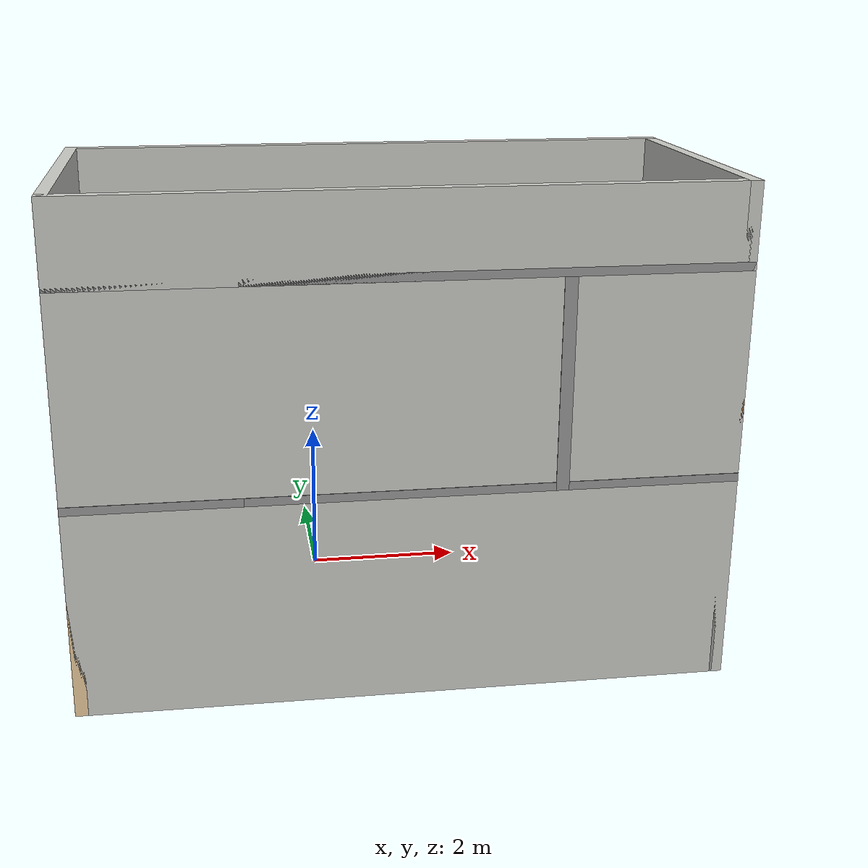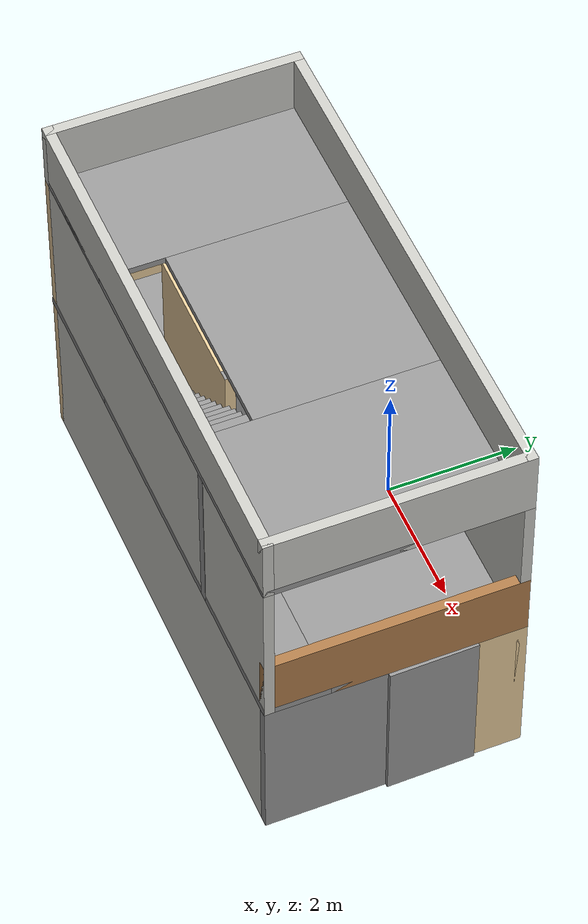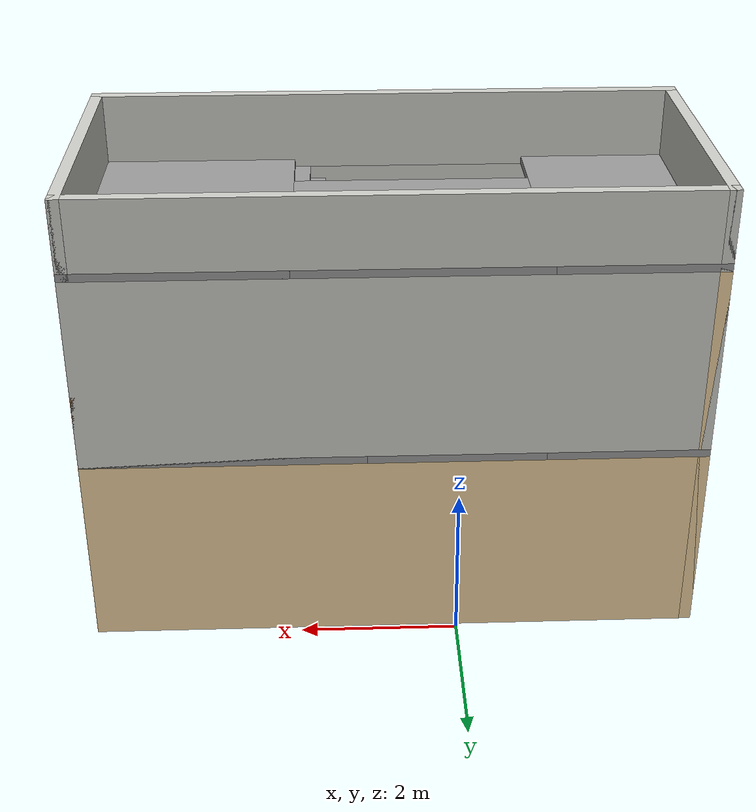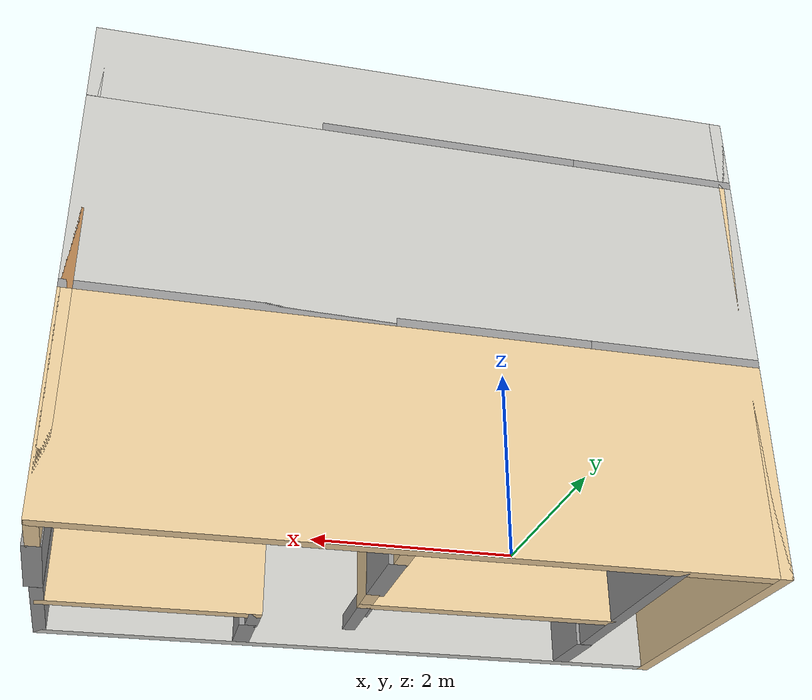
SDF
<?xml version='1.0'?>
<sdf version='1.7'>
  <model name='assignment'>
    <pose>0.78 -1.9075 0 0 -0 0</pose>
    <link name='Door_0'>
      <collision name='Door_0_Collision'>
        <geometry>
          <box>
            <size>0.872 0.2 2.5</size>
          </box>
        </geometry>
        <pose>0 0 1.25 0 -0 0</pose>
      </collision>
      <visual name='Door_0_Visual'>
        <pose>0 0 1.25 0 -0 0</pose>
        <geometry>
          <box>
            <size>0.872 0.2 2.5</size>
          </box>
        </geometry>
        <material>
          <script>
            <uri>file://media/materials/scripts/gazebo.material</uri>
            <name>Gazebo/Grey</name>
          </script>
        </material>
      </visual>
      <pose>-2.63646 -1.39085 0 0 -0 1.59452</pose>
    </link>
    <link name='Door_1'>
      <collision name='Door_1_Collision'>
        <geometry>
          <box>
            <size>1.039 0.2 2.5</size>
          </box>
        </geometry>
        <pose>0 0 1.25 0 -0 0</pose>
      </collision>
      <visual name='Door_1_Visual'>
        <pose>0 0 1.25 0 -0 0</pose>
        <geometry>
          <box>
            <size>1.039 0.2 2.5</size>
          </box>
        </geometry>
        <material>
          <script>
            <uri>file://media/materials/scripts/gazebo.material</uri>
            <name>Gazebo/Grey</name>
          </script>
        </material>
      </visual>
      <pose>0.248175 0.879451 0 0 -0 1.58189</pose>
    </link>
    <link name='Door_2'>
      <collision name='Door_2_Collision'>
        <geometry>
          <box>
            <size>0.719 0.2 2.5</size>
          </box>
        </geometry>
        <pose>0 0 1.25 0 -0 0</pose>
      </collision>
      <visual name='Door_2_Visual'>
        <pose>0 0 1.25 0 -0 0</pose>
        <geometry>
          <box>
            <size>0.719 0.2 2.5</size>
          </box>
        </geometry>
        <material>
          <script>
            <uri>file://media/materials/scripts/gazebo.material</uri>
            <name>Gazebo/Grey</name>
          </script>
        </material>
      </visual>
      <pose>1.45047 -1.39972 0 0 -0 1.56649</pose>
    </link>
    <link name='Door_3'>
      <collision name='Door_3_Collision'>
        <geometry>
          <box>
            <size>1.288 0.2 2.5</size>
          </box>
        </geometry>
        <pose>0 0 1.25 0 -0 0</pose>
      </collision>
      <visual name='Door_3_Visual'>
        <pose>0 0 1.25 0 -0 0</pose>
        <geometry>
          <box>
            <size>1.288 0.2 2.5</size>
          </box>
        </geometry>
        <material>
          <script>
            <uri>file://media/materials/scripts/gazebo.material</uri>
            <name>Gazebo/Grey</name>
          </script>
        </material>
      </visual>
      <pose>3.81962 0.490481 0 0 -0 1.5834</pose>
    </link>
    <link name='Door_4'>
      <collision name='Door_4_Collision'>
        <geometry>
          <box>
            <size>1.23 0.2 2.5</size>
          </box>
        </geometry>
        <pose>0 0 1.25 0 -0 0</pose>
      </collision>
      <visual name='Door_4_Visual'>
        <pose>0 0 1.25 0 -0 0</pose>
        <geometry>
          <box>
            <size>1.23 0.2 2.5</size>
          </box>
        </geometry>
        <material>
          <script>
            <uri>file://media/materials/scripts/gazebo.material</uri>
            <name>Gazebo/Grey</name>
          </script>
        </material>
      </visual>
      <pose>1.80627 -0.324655 2.5 0 -0 1.53145</pose>
    </link>
    <link name='Door_5'>
      <collision name='Door_5_Collision'>
        <geometry>
          <box>
            <size>1.07486 0.2 2</size>
          </box>
        </geometry>
        <pose>0 0 1 0 -0 0</pose>
      </collision>
      <visual name='Door_5_Visual'>
        <pose>0 0 1 0 -0 0</pose>
        <geometry>
          <box>
            <size>1.07486 0.2 2</size>
          </box>
        </geometry>
        <material>
          <script>
            <uri>file://media/materials/scripts/gazebo.material</uri>
            <name>Gazebo/Grey</name>
          </script>
        </material>
      </visual>
      <pose>-3.2085 -0.038622 2.5 0 -0 3.12405</pose>
    </link>
    <link name='Floor_6'>
      <pose>0 -0.036003 2.5 0 -0 0</pose>
      <visual name='Floor_6_Visual_0'>
        <pose>-2.86537 0 0.05 0 -0 0</pose>
        <geometry>
          <box>
            <size>2.01925 3.75701 0.1</size>
          </box>
        </geometry>
        <material>
          <script>
            <uri>file://media/materials/scripts/gazebo.material</uri>
            <name>Gazebo/Grey</name>
          </script>
          <ambient>1 1 1 1</ambient>
        </material>
        <meta>
          <layer>1</layer>
        </meta>
      </visual>
      <collision name='Floor_6_Collision_0'>
        <geometry>
          <box>
            <size>2.01925 3.75701 0.1</size>
          </box>
        </geometry>
        <pose>-2.86537 0 0.05 0 -0 0</pose>
      </collision>
      <visual name='Floor_6_Visual_1'>
        <pose>1.00962 -1.40283 0.05 0 -0 0</pose>
        <geometry>
          <box>
            <size>5.73075 0.951347 0.1</size>
          </box>
        </geometry>
        <material>
          <script>
            <uri>file://media/materials/scripts/gazebo.material</uri>
            <name>Gazebo/Grey</name>
          </script>
          <ambient>1 1 1 1</ambient>
        </material>
        <meta>
          <layer>1</layer>
        </meta>
      </visual>
      <collision name='Floor_6_Collision_1'>
        <geometry>
          <box>
            <size>5.73075 0.951347 0.1</size>
          </box>
        </geometry>
        <pose>1.00962 -1.40283 0.05 0 -0 0</pose>
      </collision>
      <visual name='Floor_6_Visual_2'>
        <pose>2.11365 0.475673 0.05 0 -0 0</pose>
        <geometry>
          <box>
            <size>3.52269 2.80566 0.1</size>
          </box>
        </geometry>
        <material>
          <script>
            <uri>file://media/materials/scripts/gazebo.material</uri>
            <name>Gazebo/Grey</name>
          </script>
          <ambient>1 1 1 1</ambient>
        </material>
        <meta>
          <layer>1</layer>
        </meta>
      </visual>
      <collision name='Floor_6_Collision_2'>
        <geometry>
          <box>
            <size>3.52269 2.80566 0.1</size>
          </box>
        </geometry>
        <pose>2.11365 0.475673 0.05 0 -0 0</pose>
      </collision>
      <visual name='Floor_6_Visual_3'>
        <pose>-0.751722 0.903899 0.05 0 -0 0</pose>
        <geometry>
          <box>
            <size>2.20806 1.94921 0.1</size>
          </box>
        </geometry>
        <material>
          <script>
            <uri>file://media/materials/scripts/gazebo.material</uri>
            <name>Gazebo/Grey</name>
          </script>
          <ambient>1 1 1 1</ambient>
        </material>
        <meta>
          <layer>1</layer>
        </meta>
      </visual>
      <collision name='Floor_6_Collision_3'>
        <geometry>
          <box>
            <size>2.20806 1.94921 0.1</size>
          </box>
        </geometry>
        <pose>-0.751722 0.903899 0.05 0 -0 0</pose>
      </collision>
    </link>
    <link name='Floor_7'>
      <pose>0 -0.0325 5 0 -0 0</pose>
      <visual name='Floor_7_Visual_0'>
        <pose>-2.8538 0 0.05 0 -0 0</pose>
        <geometry>
          <box>
            <size>2.0424 3.75 0.1</size>
          </box>
        </geometry>
        <material>
          <script>
            <uri>file://media/materials/scripts/gazebo.material</uri>
            <name>Gazebo/Grey</name>
          </script>
          <ambient>1 1 1 1</ambient>
        </material>
        <meta>
          <layer>2</layer>
        </meta>
      </visual>
      <collision name='Floor_7_Collision_0'>
        <geometry>
          <box>
            <size>2.0424 3.75 0.1</size>
          </box>
        </geometry>
        <pose>-2.8538 0 0.05 0 -0 0</pose>
      </collision>
      <visual name='Floor_7_Visual_1'>
        <pose>1.0212 -1.83653 0.05 0 -0 0</pose>
        <geometry>
          <box>
            <size>5.7076 0.076941 0.1</size>
          </box>
        </geometry>
        <material>
          <script>
            <uri>file://media/materials/scripts/gazebo.material</uri>
            <name>Gazebo/Grey</name>
          </script>
          <ambient>1 1 1 1</ambient>
        </material>
        <meta>
          <layer>2</layer>
        </meta>
      </visual>
      <collision name='Floor_7_Collision_1'>
        <geometry>
          <box>
            <size>5.7076 0.076941 0.1</size>
          </box>
        </geometry>
        <pose>1.0212 -1.83653 0.05 0 -0 0</pose>
      </collision>
      <visual name='Floor_7_Visual_2'>
        <pose>2.5479 0.03847 0.05 0 -0 0</pose>
        <geometry>
          <box>
            <size>2.6542 3.67306 0.1</size>
          </box>
        </geometry>
        <material>
          <script>
            <uri>file://media/materials/scripts/gazebo.material</uri>
            <name>Gazebo/Grey</name>
          </script>
          <ambient>1 1 1 1</ambient>
        </material>
        <meta>
          <layer>2</layer>
        </meta>
      </visual>
      <collision name='Floor_7_Collision_2'>
        <geometry>
          <box>
            <size>2.6542 3.67306 0.1</size>
          </box>
        </geometry>
        <pose>2.5479 0.03847 0.05 0 -0 0</pose>
      </collision>
      <visual name='Floor_7_Visual_3'>
        <pose>-0.305897 0.474671 0.05 0 -0 0</pose>
        <geometry>
          <box>
            <size>3.0534 2.80066 0.1</size>
          </box>
        </geometry>
        <material>
          <script>
            <uri>file://media/materials/scripts/gazebo.material</uri>
            <name>Gazebo/Grey</name>
          </script>
          <ambient>1 1 1 1</ambient>
        </material>
        <meta>
          <layer>2</layer>
        </meta>
      </visual>
      <collision name='Floor_7_Collision_3'>
        <geometry>
          <box>
            <size>3.0534 2.80066 0.1</size>
          </box>
        </geometry>
        <pose>-0.305897 0.474671 0.05 0 -0 0</pose>
      </collision>
    </link>
    <link name='Stairs_2'>
      <visual name='Stairs_2_Visual_0'>
        <pose>0.278705 -0.534935 0.083333 0 -0 -1.5708</pose>
        <geometry>
          <box>
            <size>0.856451 0.147204 0.166667</size>
          </box>
        </geometry>
        <material>
          <script>
            <uri>file://media/materials/scripts/gazebo.material</uri>
            <name>Gazebo/Grey</name>
          </script>
          <ambient>1 1 1 1</ambient>
        </material>
        <meta>
          <layer>0</layer>
        </meta>
      </visual>
      <collision name='Stairs_2_Collision_0'>
        <geometry>
          <box>
            <size>0.856451 0.147204 0.166667</size>
          </box>
        </geometry>
        <pose>0.278705 -0.534935 0.083333 0 -0 -1.5708</pose>
      </collision>
      <visual name='Stairs_2_Visual_1'>
        <pose>0.131501 -0.534935 0.25 0 -0 -1.5708</pose>
        <geometry>
          <box>
            <size>0.856451 0.147204 0.166667</size>
          </box>
        </geometry>
        <material>
          <script>
            <uri>file://media/materials/scripts/gazebo.material</uri>
            <name>Gazebo/Grey</name>
          </script>
          <ambient>1 1 1 1</ambient>
        </material>
        <meta>
          <layer>0</layer>
        </meta>
      </visual>
      <collision name='Stairs_2_Collision_1'>
        <geometry>
          <box>
            <size>0.856451 0.147204 0.166667</size>
          </box>
        </geometry>
        <pose>0.131501 -0.534935 0.25 0 -0 -1.5708</pose>
      </collision>
      <visual name='Stairs_2_Visual_2'>
        <pose>-0.015702 -0.534935 0.416667 0 -0 -1.5708</pose>
        <geometry>
          <box>
            <size>0.856451 0.147204 0.166667</size>
          </box>
        </geometry>
        <material>
          <script>
            <uri>file://media/materials/scripts/gazebo.material</uri>
            <name>Gazebo/Grey</name>
          </script>
          <ambient>1 1 1 1</ambient>
        </material>
        <meta>
          <layer>0</layer>
        </meta>
      </visual>
      <collision name='Stairs_2_Collision_2'>
        <geometry>
          <box>
            <size>0.856451 0.147204 0.166667</size>
          </box>
        </geometry>
        <pose>-0.015702 -0.534935 0.416667 0 -0 -1.5708</pose>
      </collision>
      <visual name='Stairs_2_Visual_3'>
        <pose>-0.162906 -0.534935 0.583333 0 -0 -1.5708</pose>
        <geometry>
          <box>
            <size>0.856451 0.147204 0.166667</size>
          </box>
        </geometry>
        <material>
          <script>
            <uri>file://media/materials/scripts/gazebo.material</uri>
            <name>Gazebo/Grey</name>
          </script>
          <ambient>1 1 1 1</ambient>
        </material>
        <meta>
          <layer>0</layer>
        </meta>
      </visual>
      <collision name='Stairs_2_Collision_3'>
        <geometry>
          <box>
            <size>0.856451 0.147204 0.166667</size>
          </box>
        </geometry>
        <pose>-0.162906 -0.534935 0.583333 0 -0 -1.5708</pose>
      </collision>
      <visual name='Stairs_2_Visual_4'>
        <pose>-0.31011 -0.534935 0.75 0 -0 -1.5708</pose>
        <geometry>
          <box>
            <size>0.856451 0.147204 0.166667</size>
          </box>
        </geometry>
        <material>
          <script>
            <uri>file://media/materials/scripts/gazebo.material</uri>
            <name>Gazebo/Grey</name>
          </script>
          <ambient>1 1 1 1</ambient>
        </material>
        <meta>
          <layer>0</layer>
        </meta>
      </visual>
      <collision name='Stairs_2_Collision_4'>
        <geometry>
          <box>
            <size>0.856451 0.147204 0.166667</size>
          </box>
        </geometry>
        <pose>-0.31011 -0.534935 0.75 0 -0 -1.5708</pose>
      </collision>
      <visual name='Stairs_2_Visual_5'>
        <pose>-0.457314 -0.534935 0.916667 0 -0 -1.5708</pose>
        <geometry>
          <box>
            <size>0.856451 0.147204 0.166667</size>
          </box>
        </geometry>
        <material>
          <script>
            <uri>file://media/materials/scripts/gazebo.material</uri>
            <name>Gazebo/Grey</name>
          </script>
          <ambient>1 1 1 1</ambient>
        </material>
        <meta>
          <layer>0</layer>
        </meta>
      </visual>
      <collision name='Stairs_2_Collision_5'>
        <geometry>
          <box>
            <size>0.856451 0.147204 0.166667</size>
          </box>
        </geometry>
        <pose>-0.457314 -0.534935 0.916667 0 -0 -1.5708</pose>
      </collision>
      <visual name='Stairs_2_Visual_6'>
        <pose>-0.604518 -0.534935 1.08333 0 -0 -1.5708</pose>
        <geometry>
          <box>
            <size>0.856451 0.147204 0.166667</size>
          </box>
        </geometry>
        <material>
          <script>
            <uri>file://media/materials/scripts/gazebo.material</uri>
            <name>Gazebo/Grey</name>
          </script>
          <ambient>1 1 1 1</ambient>
        </material>
        <meta>
          <layer>0</layer>
        </meta>
      </visual>
      <collision name='Stairs_2_Collision_6'>
        <geometry>
          <box>
            <size>0.856451 0.147204 0.166667</size>
          </box>
        </geometry>
        <pose>-0.604518 -0.534935 1.08333 0 -0 -1.5708</pose>
      </collision>
      <visual name='Stairs_2_Visual_7'>
        <pose>-0.751722 -0.534935 1.25 0 -0 -1.5708</pose>
        <geometry>
          <box>
            <size>0.856451 0.147204 0.166667</size>
          </box>
        </geometry>
        <material>
          <script>
            <uri>file://media/materials/scripts/gazebo.material</uri>
            <name>Gazebo/Grey</name>
          </script>
          <ambient>1 1 1 1</ambient>
        </material>
        <meta>
          <layer>0</layer>
        </meta>
      </visual>
      <collision name='Stairs_2_Collision_7'>
        <geometry>
          <box>
            <size>0.856451 0.147204 0.166667</size>
          </box>
        </geometry>
        <pose>-0.751722 -0.534935 1.25 0 -0 -1.5708</pose>
      </collision>
      <visual name='Stairs_2_Visual_8'>
        <pose>-0.898926 -0.534935 1.41667 0 -0 -1.5708</pose>
        <geometry>
          <box>
            <size>0.856451 0.147204 0.166667</size>
          </box>
        </geometry>
        <material>
          <script>
            <uri>file://media/materials/scripts/gazebo.material</uri>
            <name>Gazebo/Grey</name>
          </script>
          <ambient>1 1 1 1</ambient>
        </material>
        <meta>
          <layer>0</layer>
        </meta>
      </visual>
      <collision name='Stairs_2_Collision_8'>
        <geometry>
          <box>
            <size>0.856451 0.147204 0.166667</size>
          </box>
        </geometry>
        <pose>-0.898926 -0.534935 1.41667 0 -0 -1.5708</pose>
      </collision>
      <visual name='Stairs_2_Visual_9'>
        <pose>-1.04613 -0.534935 1.58333 0 -0 -1.5708</pose>
        <geometry>
          <box>
            <size>0.856451 0.147204 0.166667</size>
          </box>
        </geometry>
        <material>
          <script>
            <uri>file://media/materials/scripts/gazebo.material</uri>
            <name>Gazebo/Grey</name>
          </script>
          <ambient>1 1 1 1</ambient>
        </material>
        <meta>
          <layer>0</layer>
        </meta>
      </visual>
      <collision name='Stairs_2_Collision_9'>
        <geometry>
          <box>
            <size>0.856451 0.147204 0.166667</size>
          </box>
        </geometry>
        <pose>-1.04613 -0.534935 1.58333 0 -0 -1.5708</pose>
      </collision>
      <visual name='Stairs_2_Visual_10'>
        <pose>-1.19333 -0.534935 1.75 0 -0 -1.5708</pose>
        <geometry>
          <box>
            <size>0.856451 0.147204 0.166667</size>
          </box>
        </geometry>
        <material>
          <script>
            <uri>file://media/materials/scripts/gazebo.material</uri>
            <name>Gazebo/Grey</name>
          </script>
          <ambient>1 1 1 1</ambient>
        </material>
        <meta>
          <layer>0</layer>
        </meta>
      </visual>
      <collision name='Stairs_2_Collision_10'>
        <geometry>
          <box>
            <size>0.856451 0.147204 0.166667</size>
          </box>
        </geometry>
        <pose>-1.19333 -0.534935 1.75 0 -0 -1.5708</pose>
      </collision>
      <visual name='Stairs_2_Visual_11'>
        <pose>-1.34054 -0.534935 1.91667 0 -0 -1.5708</pose>
        <geometry>
          <box>
            <size>0.856451 0.147204 0.166667</size>
          </box>
        </geometry>
        <material>
          <script>
            <uri>file://media/materials/scripts/gazebo.material</uri>
            <name>Gazebo/Grey</name>
          </script>
          <ambient>1 1 1 1</ambient>
        </material>
        <meta>
          <layer>0</layer>
        </meta>
      </visual>
      <collision name='Stairs_2_Collision_11'>
        <geometry>
          <box>
            <size>0.856451 0.147204 0.166667</size>
          </box>
        </geometry>
        <pose>-1.34054 -0.534935 1.91667 0 -0 -1.5708</pose>
      </collision>
      <visual name='Stairs_2_Visual_12'>
        <pose>-1.48774 -0.534935 2.08333 0 -0 -1.5708</pose>
        <geometry>
          <box>
            <size>0.856451 0.147204 0.166667</size>
          </box>
        </geometry>
        <material>
          <script>
            <uri>file://media/materials/scripts/gazebo.material</uri>
            <name>Gazebo/Grey</name>
          </script>
          <ambient>1 1 1 1</ambient>
        </material>
        <meta>
          <layer>0</layer>
        </meta>
      </visual>
      <collision name='Stairs_2_Collision_12'>
        <geometry>
          <box>
            <size>0.856451 0.147204 0.166667</size>
          </box>
        </geometry>
        <pose>-1.48774 -0.534935 2.08333 0 -0 -1.5708</pose>
      </collision>
      <visual name='Stairs_2_Visual_13'>
        <pose>-1.63495 -0.534935 2.25 0 -0 -1.5708</pose>
        <geometry>
          <box>
            <size>0.856451 0.147204 0.166667</size>
          </box>
        </geometry>
        <material>
          <script>
            <uri>file://media/materials/scripts/gazebo.material</uri>
            <name>Gazebo/Grey</name>
          </script>
          <ambient>1 1 1 1</ambient>
        </material>
        <meta>
          <layer>0</layer>
        </meta>
      </visual>
      <collision name='Stairs_2_Collision_13'>
        <geometry>
          <box>
            <size>0.856451 0.147204 0.166667</size>
          </box>
        </geometry>
        <pose>-1.63495 -0.534935 2.25 0 -0 -1.5708</pose>
      </collision>
      <visual name='Stairs_2_Visual_14'>
        <pose>-1.78215 -0.534935 2.41667 0 -0 -1.5708</pose>
        <geometry>
          <box>
            <size>0.856451 0.147204 0.166667</size>
          </box>
        </geometry>
        <material>
          <script>
            <uri>file://media/materials/scripts/gazebo.material</uri>
            <name>Gazebo/Grey</name>
          </script>
          <ambient>1 1 1 1</ambient>
        </material>
        <meta>
          <layer>0</layer>
        </meta>
      </visual>
      <collision name='Stairs_2_Collision_14'>
        <geometry>
          <box>
            <size>0.856451 0.147204 0.166667</size>
          </box>
        </geometry>
        <pose>-1.78215 -0.534935 2.41667 0 -0 -1.5708</pose>
      </collision>
    </link>
    <link name='Stairs_3'>
      <visual name='Stairs_3_Visual_0'>
        <pose>-1.73082 -1.39436 2.58333 0 -0 1.5708</pose>
        <geometry>
          <box>
            <size>0.872401 0.20356 0.166667</size>
          </box>
        </geometry>
        <material>
          <script>
            <uri>file://media/materials/scripts/gazebo.material</uri>
            <name>Gazebo/Grey</name>
          </script>
          <ambient>1 1 1 1</ambient>
        </material>
        <meta>
          <layer>1</layer>
        </meta>
      </visual>
      <collision name='Stairs_3_Collision_0'>
        <geometry>
          <box>
            <size>0.872401 0.20356 0.166667</size>
          </box>
        </geometry>
        <pose>-1.73082 -1.39436 2.58333 0 -0 1.5708</pose>
      </collision>
      <visual name='Stairs_3_Visual_1'>
        <pose>-1.52726 -1.39436 2.75 0 -0 1.5708</pose>
        <geometry>
          <box>
            <size>0.872401 0.20356 0.166667</size>
          </box>
        </geometry>
        <material>
          <script>
            <uri>file://media/materials/scripts/gazebo.material</uri>
            <name>Gazebo/Grey</name>
          </script>
          <ambient>1 1 1 1</ambient>
        </material>
        <meta>
          <layer>1</layer>
        </meta>
      </visual>
      <collision name='Stairs_3_Collision_1'>
        <geometry>
          <box>
            <size>0.872401 0.20356 0.166667</size>
          </box>
        </geometry>
        <pose>-1.52726 -1.39436 2.75 0 -0 1.5708</pose>
      </collision>
      <visual name='Stairs_3_Visual_2'>
        <pose>-1.3237 -1.39436 2.91667 0 -0 1.5708</pose>
        <geometry>
          <box>
            <size>0.872401 0.20356 0.166667</size>
          </box>
        </geometry>
        <material>
          <script>
            <uri>file://media/materials/scripts/gazebo.material</uri>
            <name>Gazebo/Grey</name>
          </script>
          <ambient>1 1 1 1</ambient>
        </material>
        <meta>
          <layer>1</layer>
        </meta>
      </visual>
      <collision name='Stairs_3_Collision_2'>
        <geometry>
          <box>
            <size>0.872401 0.20356 0.166667</size>
          </box>
        </geometry>
        <pose>-1.3237 -1.39436 2.91667 0 -0 1.5708</pose>
      </collision>
      <visual name='Stairs_3_Visual_3'>
        <pose>-1.12014 -1.39436 3.08333 0 -0 1.5708</pose>
        <geometry>
          <box>
            <size>0.872401 0.20356 0.166667</size>
          </box>
        </geometry>
        <material>
          <script>
            <uri>file://media/materials/scripts/gazebo.material</uri>
            <name>Gazebo/Grey</name>
          </script>
          <ambient>1 1 1 1</ambient>
        </material>
        <meta>
          <layer>1</layer>
        </meta>
      </visual>
      <collision name='Stairs_3_Collision_3'>
        <geometry>
          <box>
            <size>0.872401 0.20356 0.166667</size>
          </box>
        </geometry>
        <pose>-1.12014 -1.39436 3.08333 0 -0 1.5708</pose>
      </collision>
      <visual name='Stairs_3_Visual_4'>
        <pose>-0.916578 -1.39436 3.25 0 -0 1.5708</pose>
        <geometry>
          <box>
            <size>0.872401 0.20356 0.166667</size>
          </box>
        </geometry>
        <material>
          <script>
            <uri>file://media/materials/scripts/gazebo.material</uri>
            <name>Gazebo/Grey</name>
          </script>
          <ambient>1 1 1 1</ambient>
        </material>
        <meta>
          <layer>1</layer>
        </meta>
      </visual>
      <collision name='Stairs_3_Collision_4'>
        <geometry>
          <box>
            <size>0.872401 0.20356 0.166667</size>
          </box>
        </geometry>
        <pose>-0.916578 -1.39436 3.25 0 -0 1.5708</pose>
      </collision>
      <visual name='Stairs_3_Visual_5'>
        <pose>-0.713017 -1.39436 3.41667 0 -0 1.5708</pose>
        <geometry>
          <box>
            <size>0.872401 0.20356 0.166667</size>
          </box>
        </geometry>
        <material>
          <script>
            <uri>file://media/materials/scripts/gazebo.material</uri>
            <name>Gazebo/Grey</name>
          </script>
          <ambient>1 1 1 1</ambient>
        </material>
        <meta>
          <layer>1</layer>
        </meta>
      </visual>
      <collision name='Stairs_3_Collision_5'>
        <geometry>
          <box>
            <size>0.872401 0.20356 0.166667</size>
          </box>
        </geometry>
        <pose>-0.713017 -1.39436 3.41667 0 -0 1.5708</pose>
      </collision>
      <visual name='Stairs_3_Visual_6'>
        <pose>-0.509457 -1.39436 3.58333 0 -0 1.5708</pose>
        <geometry>
          <box>
            <size>0.872401 0.20356 0.166667</size>
          </box>
        </geometry>
        <material>
          <script>
            <uri>file://media/materials/scripts/gazebo.material</uri>
            <name>Gazebo/Grey</name>
          </script>
          <ambient>1 1 1 1</ambient>
        </material>
        <meta>
          <layer>1</layer>
        </meta>
      </visual>
      <collision name='Stairs_3_Collision_6'>
        <geometry>
          <box>
            <size>0.872401 0.20356 0.166667</size>
          </box>
        </geometry>
        <pose>-0.509457 -1.39436 3.58333 0 -0 1.5708</pose>
      </collision>
      <visual name='Stairs_3_Visual_7'>
        <pose>-0.305897 -1.39436 3.75 0 -0 1.5708</pose>
        <geometry>
          <box>
            <size>0.872401 0.20356 0.166667</size>
          </box>
        </geometry>
        <material>
          <script>
            <uri>file://media/materials/scripts/gazebo.material</uri>
            <name>Gazebo/Grey</name>
          </script>
          <ambient>1 1 1 1</ambient>
        </material>
        <meta>
          <layer>1</layer>
        </meta>
      </visual>
      <collision name='Stairs_3_Collision_7'>
        <geometry>
          <box>
            <size>0.872401 0.20356 0.166667</size>
          </box>
        </geometry>
        <pose>-0.305897 -1.39436 3.75 0 -0 1.5708</pose>
      </collision>
      <visual name='Stairs_3_Visual_8'>
        <pose>-0.102337 -1.39436 3.91667 0 -0 1.5708</pose>
        <geometry>
          <box>
            <size>0.872401 0.20356 0.166667</size>
          </box>
        </geometry>
        <material>
          <script>
            <uri>file://media/materials/scripts/gazebo.material</uri>
            <name>Gazebo/Grey</name>
          </script>
          <ambient>1 1 1 1</ambient>
        </material>
        <meta>
          <layer>1</layer>
        </meta>
      </visual>
      <collision name='Stairs_3_Collision_8'>
        <geometry>
          <box>
            <size>0.872401 0.20356 0.166667</size>
          </box>
        </geometry>
        <pose>-0.102337 -1.39436 3.91667 0 -0 1.5708</pose>
      </collision>
      <visual name='Stairs_3_Visual_9'>
        <pose>0.101223 -1.39436 4.08333 0 -0 1.5708</pose>
        <geometry>
          <box>
            <size>0.872401 0.20356 0.166667</size>
          </box>
        </geometry>
        <material>
          <script>
            <uri>file://media/materials/scripts/gazebo.material</uri>
            <name>Gazebo/Grey</name>
          </script>
          <ambient>1 1 1 1</ambient>
        </material>
        <meta>
          <layer>1</layer>
        </meta>
      </visual>
      <collision name='Stairs_3_Collision_9'>
        <geometry>
          <box>
            <size>0.872401 0.20356 0.166667</size>
          </box>
        </geometry>
        <pose>0.101223 -1.39436 4.08333 0 -0 1.5708</pose>
      </collision>
      <visual name='Stairs_3_Visual_10'>
        <pose>0.304784 -1.39436 4.25 0 -0 1.5708</pose>
        <geometry>
          <box>
            <size>0.872401 0.20356 0.166667</size>
          </box>
        </geometry>
        <material>
          <script>
            <uri>file://media/materials/scripts/gazebo.material</uri>
            <name>Gazebo/Grey</name>
          </script>
          <ambient>1 1 1 1</ambient>
        </material>
        <meta>
          <layer>1</layer>
        </meta>
      </visual>
      <collision name='Stairs_3_Collision_10'>
        <geometry>
          <box>
            <size>0.872401 0.20356 0.166667</size>
          </box>
        </geometry>
        <pose>0.304784 -1.39436 4.25 0 -0 1.5708</pose>
      </collision>
      <visual name='Stairs_3_Visual_11'>
        <pose>0.508344 -1.39436 4.41667 0 -0 1.5708</pose>
        <geometry>
          <box>
            <size>0.872401 0.20356 0.166667</size>
          </box>
        </geometry>
        <material>
          <script>
            <uri>file://media/materials/scripts/gazebo.material</uri>
            <name>Gazebo/Grey</name>
          </script>
          <ambient>1 1 1 1</ambient>
        </material>
        <meta>
          <layer>1</layer>
        </meta>
      </visual>
      <collision name='Stairs_3_Collision_11'>
        <geometry>
          <box>
            <size>0.872401 0.20356 0.166667</size>
          </box>
        </geometry>
        <pose>0.508344 -1.39436 4.41667 0 -0 1.5708</pose>
      </collision>
      <visual name='Stairs_3_Visual_12'>
        <pose>0.711904 -1.39436 4.58333 0 -0 1.5708</pose>
        <geometry>
          <box>
            <size>0.872401 0.20356 0.166667</size>
          </box>
        </geometry>
        <material>
          <script>
            <uri>file://media/materials/scripts/gazebo.material</uri>
            <name>Gazebo/Grey</name>
          </script>
          <ambient>1 1 1 1</ambient>
        </material>
        <meta>
          <layer>1</layer>
        </meta>
      </visual>
      <collision name='Stairs_3_Collision_12'>
        <geometry>
          <box>
            <size>0.872401 0.20356 0.166667</size>
          </box>
        </geometry>
        <pose>0.711904 -1.39436 4.58333 0 -0 1.5708</pose>
      </collision>
      <visual name='Stairs_3_Visual_13'>
        <pose>0.915464 -1.39436 4.75 0 -0 1.5708</pose>
        <geometry>
          <box>
            <size>0.872401 0.20356 0.166667</size>
          </box>
        </geometry>
        <material>
          <script>
            <uri>file://media/materials/scripts/gazebo.material</uri>
            <name>Gazebo/Grey</name>
          </script>
          <ambient>1 1 1 1</ambient>
        </material>
        <meta>
          <layer>1</layer>
        </meta>
      </visual>
      <collision name='Stairs_3_Collision_13'>
        <geometry>
          <box>
            <size>0.872401 0.20356 0.166667</size>
          </box>
        </geometry>
        <pose>0.915464 -1.39436 4.75 0 -0 1.5708</pose>
      </collision>
      <visual name='Stairs_3_Visual_14'>
        <pose>1.11902 -1.39436 4.91667 0 -0 1.5708</pose>
        <geometry>
          <box>
            <size>0.872401 0.20356 0.166667</size>
          </box>
        </geometry>
        <material>
          <script>
            <uri>file://media/materials/scripts/gazebo.material</uri>
            <name>Gazebo/Grey</name>
          </script>
          <ambient>1 1 1 1</ambient>
        </material>
        <meta>
          <layer>1</layer>
        </meta>
      </visual>
      <collision name='Stairs_3_Collision_14'>
        <geometry>
          <box>
            <size>0.872401 0.20356 0.166667</size>
          </box>
        </geometry>
        <pose>1.11902 -1.39436 4.91667 0 -0 1.5708</pose>
      </collision>
    </link>
    <link name='Wall_1'>
      <collision name='Wall_1_Collision'>
        <geometry>
          <box>
            <size>7.75 0.15 2.5</size>
          </box>
        </geometry>
        <pose>0 0 1.25 0 -0 0</pose>
      </collision>
      <visual name='Wall_1_Visual'>
        <pose>0 0 1.25 0 -0 0</pose>
        <geometry>
          <box>
            <size>7.75 0.15 2.5</size>
          </box>
        </geometry>
        <material>
          <script>
            <uri>file://media/materials/scripts/gazebo.material</uri>
            <name>Gazebo/CeilingTiled</name>
          </script>
          <ambient>0.921569 0.807843 0.615686 1</ambient>
        </material>
        <meta>
          <layer>0</layer>
        </meta>
      </visual>
      <pose>0 -1.8325 0 0 -0 0</pose>
    </link>
    <link name='Wall_10'>
      <collision name='Wall_10_Collision'>
        <geometry>
          <box>
            <size>3 0.15 2.5</size>
          </box>
        </geometry>
        <pose>0 0 1.25 0 -0 0</pose>
      </collision>
      <visual name='Wall_10_Visual'>
        <pose>0 0 1.25 0 -0 0</pose>
        <geometry>
          <box>
            <size>3 0.15 2.5</size>
          </box>
        </geometry>
        <material>
          <script>
            <uri>file://media/materials/scripts/gazebo.material</uri>
            <name>Gazebo/Grey</name>
          </script>
          <ambient>0.921569 0.807843 0.615686 1</ambient>
        </material>
        <meta>
          <layer>0</layer>
        </meta>
      </visual>
      <pose>-1.145 -0.0425 0 0 -0 0</pose>
    </link>
    <link name='Wall_100'>
      <collision name='Wall_100_Collision'>
        <geometry>
          <box>
            <size>3.75 0.15 1</size>
          </box>
        </geometry>
        <pose>0 0 0.5 0 -0 0</pose>
      </collision>
      <visual name='Wall_100_Visual'>
        <pose>0 0 0.5 0 -0 0</pose>
        <geometry>
          <box>
            <size>3.75 0.15 1</size>
          </box>
        </geometry>
        <material>
          <script>
            <uri>file://media/materials/scripts/gazebo.material</uri>
            <name>Gazebo/CeilingTiled</name>
          </script>
          <ambient>1 1 1 1</ambient>
        </material>
        <meta>
          <layer>2</layer>
        </meta>
      </visual>
      <pose>3.8 -0.0325 5 0 -0 -1.5708</pose>
    </link>
    <link name='Wall_11'>
      <collision name='Wall_11_Collision'>
        <geometry>
          <box>
            <size>0.5 0.15 2.5</size>
          </box>
        </geometry>
        <pose>0 0 1.25 0 -0 0</pose>
      </collision>
      <visual name='Wall_11_Visual'>
        <pose>0 0 1.25 0 -0 0</pose>
        <geometry>
          <box>
            <size>0.5 0.15 2.5</size>
          </box>
        </geometry>
        <material>
          <script>
            <uri>file://media/materials/scripts/gazebo.material</uri>
            <name>Gazebo/Grey</name>
          </script>
          <ambient>0.921569 0.807843 0.615686 1</ambient>
        </material>
        <meta>
          <layer>0</layer>
        </meta>
      </visual>
      <pose>0.28 0.1325 0 0 -0 1.5708</pose>
    </link>
    <link name='Wall_2'>
      <collision name='Wall_2_Collision'>
        <geometry>
          <box>
            <size>1.75 0.15 2.5</size>
          </box>
        </geometry>
        <pose>0 0 1.25 0 -0 0</pose>
      </collision>
      <visual name='Wall_2_Visual'>
        <pose>0 0 1.25 0 -0 0</pose>
        <geometry>
          <box>
            <size>1.75 0.15 2.5</size>
          </box>
        </geometry>
        <material>
          <script>
            <uri>file://media/materials/scripts/gazebo.material</uri>
            <name>Gazebo/Grey</name>
          </script>
          <ambient>1 1 1 1</ambient>
        </material>
        <meta>
          <layer>0</layer>
        </meta>
      </visual>
      <pose>3.8 -1.0325 0 0 -0 1.5708</pose>
    </link>
    <link name='Wall_4'>
      <collision name='Wall_4_Collision'>
        <geometry>
          <box>
            <size>3.75 0.15 2.5</size>
          </box>
        </geometry>
        <pose>0 0 1.25 0 -0 0</pose>
      </collision>
      <visual name='Wall_4_Visual'>
        <pose>0 0 1.25 0 -0 0</pose>
        <geometry>
          <box>
            <size>3.75 0.15 2.5</size>
          </box>
        </geometry>
        <material>
          <script>
            <uri>file://media/materials/scripts/gazebo.material</uri>
            <name>Gazebo/Grey</name>
          </script>
          <ambient>0.921569 0.807843 0.615686 1</ambient>
        </material>
        <meta>
          <layer>0</layer>
        </meta>
      </visual>
      <pose>-3.8 -0.0325 0 0 -0 1.5708</pose>
    </link>
    <link name='Wall_5'>
      <collision name='Wall_5_Collision'>
        <geometry>
          <box>
            <size>7.75 0.15 2.5</size>
          </box>
        </geometry>
        <pose>0 0 1.25 0 -0 0</pose>
      </collision>
      <visual name='Wall_5_Visual'>
        <pose>0 0 1.25 0 -0 0</pose>
        <geometry>
          <box>
            <size>7.75 0.15 2.5</size>
          </box>
        </geometry>
        <material>
          <script>
            <uri>file://media/materials/scripts/gazebo.material</uri>
            <name>Gazebo/Grey</name>
          </script>
          <ambient>0.921569 0.807843 0.615686 1</ambient>
        </material>
        <meta>
          <layer>0</layer>
        </meta>
      </visual>
      <pose>0 1.7675 0 0 -0 0</pose>
    </link>
    <link name='Wall_56'>
      <collision name='Wall_56_Collision'>
        <geometry>
          <box>
            <size>0.5 0.15 2.5</size>
          </box>
        </geometry>
        <pose>0 0 1.25 0 -0 0</pose>
      </collision>
      <visual name='Wall_56_Visual'>
        <pose>0 0 1.25 0 -0 0</pose>
        <geometry>
          <box>
            <size>0.5 0.15 2.5</size>
          </box>
        </geometry>
        <material>
          <script>
            <uri>file://media/materials/scripts/gazebo.material</uri>
            <name>Gazebo/Grey</name>
          </script>
          <ambient>0.921569 0.807843 0.615686 1</ambient>
        </material>
        <meta>
          <layer>0</layer>
        </meta>
      </visual>
      <pose>0.211925 1.58705 0 0 -0 -1.5708</pose>
    </link>
    <link name='Wall_58'>
      <collision name='Wall_58_Collision'>
        <geometry>
          <box>
            <size>2.5 0.15 2.5</size>
          </box>
        </geometry>
        <pose>0 0 1.25 0 -0 0</pose>
      </collision>
      <visual name='Wall_58_Visual'>
        <pose>0 0 1.25 0 -0 0</pose>
        <geometry>
          <box>
            <size>2.5 0.15 2.5</size>
          </box>
        </geometry>
        <material>
          <script>
            <uri>file://media/materials/scripts/gazebo.material</uri>
            <name>Gazebo/Grey</name>
          </script>
          <ambient>0.921569 0.807843 0.615686 1</ambient>
        </material>
        <meta>
          <layer>0</layer>
        </meta>
      </visual>
      <pose>2.58784 -0.677962 0 0 -0 3.14159</pose>
    </link>
    <link name='Wall_59'>
      <collision name='Wall_59_Collision'>
        <geometry>
          <box>
            <size>0.5 0.15 2.5</size>
          </box>
        </geometry>
        <pose>0 0 1.25 0 -0 0</pose>
      </collision>
      <visual name='Wall_59_Visual'>
        <pose>0 0 1.25 0 -0 0</pose>
        <geometry>
          <box>
            <size>0.5 0.15 2.5</size>
          </box>
        </geometry>
        <material>
          <script>
            <uri>file://media/materials/scripts/gazebo.material</uri>
            <name>Gazebo/Grey</name>
          </script>
          <ambient>1 1 1 1</ambient>
        </material>
        <meta>
          <layer>0</layer>
        </meta>
      </visual>
      <pose>1.41284 -0.852962 0 0 -0 -1.5708</pose>
    </link>
    <link name='Wall_6'>
      <collision name='Wall_6_Collision'>
        <geometry>
          <box>
            <size>0.75 0.15 2.5</size>
          </box>
        </geometry>
        <pose>0 0 1.25 0 -0 0</pose>
      </collision>
      <visual name='Wall_6_Visual'>
        <pose>0 0 1.25 0 -0 0</pose>
        <geometry>
          <box>
            <size>0.75 0.15 2.5</size>
          </box>
        </geometry>
        <material>
          <script>
            <uri>file://media/materials/scripts/gazebo.material</uri>
            <name>Gazebo/Grey</name>
          </script>
          <ambient>0.921569 0.807843 0.615686 1</ambient>
        </material>
        <meta>
          <layer>0</layer>
        </meta>
      </visual>
      <pose>3.8 1.4675 0 0 -0 -1.5708</pose>
    </link>
    <link name='Wall_74'>
      <collision name='Wall_74_Collision'>
        <geometry>
          <box>
            <size>7.75 0.15 2.5</size>
          </box>
        </geometry>
        <pose>0 0 1.25 0 -0 0</pose>
      </collision>
      <visual name='Wall_74_Visual'>
        <pose>0 0 1.25 0 -0 0</pose>
        <geometry>
          <box>
            <size>7.75 0.15 2.5</size>
          </box>
        </geometry>
        <material>
          <script>
            <uri>file://media/materials/scripts/gazebo.material</uri>
            <name>Gazebo/CeilingTiled</name>
          </script>
          <ambient>0.921569 0.807843 0.615686 1</ambient>
        </material>
        <meta>
          <layer>1</layer>
        </meta>
      </visual>
      <pose>0 -1.8325 2.5 0 -0 0</pose>
    </link>
    <link name='Wall_76'>
      <collision name='Wall_76_Collision'>
        <geometry>
          <box>
            <size>3.75 0.15 2.5</size>
          </box>
        </geometry>
        <pose>0 0 1.25 0 -0 0</pose>
      </collision>
      <visual name='Wall_76_Visual'>
        <pose>0 0 1.25 0 -0 0</pose>
        <geometry>
          <box>
            <size>3.75 0.15 2.5</size>
          </box>
        </geometry>
        <material>
          <script>
            <uri>file://media/materials/scripts/gazebo.material</uri>
            <name>Gazebo/Grey</name>
          </script>
          <ambient>0.921569 0.807843 0.615686 1</ambient>
        </material>
        <meta>
          <layer>1</layer>
        </meta>
      </visual>
      <pose>-3.8 -0.0325 2.5 0 -0 1.5708</pose>
    </link>
    <link name='Wall_77'>
      <collision name='Wall_77_Collision'>
        <geometry>
          <box>
            <size>7.75 0.15 2.5</size>
          </box>
        </geometry>
        <pose>0 0 1.25 0 -0 0</pose>
      </collision>
      <visual name='Wall_77_Visual'>
        <pose>0 0 1.25 0 -0 0</pose>
        <geometry>
          <box>
            <size>7.75 0.15 2.5</size>
          </box>
        </geometry>
        <material>
          <script>
            <uri>file://media/materials/scripts/gazebo.material</uri>
            <name>Gazebo/CeilingTiled</name>
          </script>
          <ambient>0.921569 0.807843 0.615686 1</ambient>
        </material>
        <meta>
          <layer>1</layer>
        </meta>
      </visual>
      <pose>0 1.7675 2.5 0 -0 0</pose>
    </link>
    <link name='Wall_8'>
      <collision name='Wall_8_Collision'>
        <geometry>
          <box>
            <size>2.75 0.15 2.5</size>
          </box>
        </geometry>
        <pose>0 0 1.25 0 -0 0</pose>
      </collision>
      <visual name='Wall_8_Visual'>
        <pose>0 0 1.25 0 -0 0</pose>
        <geometry>
          <box>
            <size>2.75 0.15 2.5</size>
          </box>
        </geometry>
        <material>
          <script>
            <uri>file://media/materials/scripts/gazebo.material</uri>
            <name>Gazebo/Grey</name>
          </script>
          <ambient>1 1 1 1</ambient>
        </material>
        <meta>
          <layer>0</layer>
        </meta>
      </visual>
      <pose>-2.66 0.4275 0 0 -0 -1.5708</pose>
    </link>
    <link name='Wall_80'>
      <collision name='Wall_80_Collision'>
        <geometry>
          <box>
            <size>3.01613 0.15 2.5</size>
          </box>
        </geometry>
        <pose>0 0 1.25 0 -0 0</pose>
      </collision>
      <visual name='Wall_80_Visual'>
        <pose>0 0 1.25 0 -0 0</pose>
        <geometry>
          <box>
            <size>3.01613 0.15 2.5</size>
          </box>
        </geometry>
        <material>
          <script>
            <uri>file://media/materials/scripts/gazebo.material</uri>
            <name>Gazebo/Grey</name>
          </script>
          <ambient>0.921569 0.807843 0.615686 1</ambient>
        </material>
        <meta>
          <layer>1</layer>
        </meta>
      </visual>
      <pose>-1.13702 -0.05845 2.5 0 -0 -0.01113</pose>
    </link>
    <link name='Wall_87'>
      <collision name='Wall_87_Collision'>
        <geometry>
          <box>
            <size>3.75 0.15 1</size>
          </box>
        </geometry>
        <pose>0 0 0.5 0 -0 0</pose>
      </collision>
      <visual name='Wall_87_Visual'>
        <pose>0 0 0.5 0 -0 0</pose>
        <geometry>
          <box>
            <size>3.75 0.15 1</size>
          </box>
        </geometry>
        <material>
          <script>
            <uri>file://media/materials/scripts/gazebo.material</uri>
            <name>Gazebo/Wood</name>
          </script>
          <ambient>1 1 1 1</ambient>
        </material>
        <meta>
          <layer>1</layer>
        </meta>
      </visual>
      <pose>3.8 -0.0325 2.5 0 -0 -1.5708</pose>
    </link>
    <link name='Wall_89'>
      <collision name='Wall_89_Collision'>
        <geometry>
          <box>
            <size>1.5 0.15 2.5</size>
          </box>
        </geometry>
        <pose>0 0 1.25 0 -0 0</pose>
      </collision>
      <visual name='Wall_89_Visual'>
        <pose>0 0 1.25 0 -0 0</pose>
        <geometry>
          <box>
            <size>1.5 0.15 2.5</size>
          </box>
        </geometry>
        <material>
          <script>
            <uri>file://media/materials/scripts/gazebo.material</uri>
            <name>Gazebo/Grey</name>
          </script>
          <ambient>0.921569 0.807843 0.615686 1</ambient>
        </material>
        <meta>
          <layer>1</layer>
        </meta>
      </visual>
      <pose>1.80824 1.04698 2.5 0 -0 -1.5708</pose>
    </link>
    <link name='Wall_91'>
      <collision name='Wall_91_Collision'>
        <geometry>
          <box>
            <size>1 0.15 2.5</size>
          </box>
        </geometry>
        <pose>0 0 1.25 0 -0 0</pose>
      </collision>
      <visual name='Wall_91_Visual'>
        <pose>0 0 1.25 0 -0 0</pose>
        <geometry>
          <box>
            <size>1 0.15 2.5</size>
          </box>
        </geometry>
        <material>
          <script>
            <uri>file://media/materials/scripts/gazebo.material</uri>
            <name>Gazebo/Grey</name>
          </script>
          <ambient>1 1 1 1</ambient>
        </material>
        <meta>
          <layer>1</layer>
        </meta>
      </visual>
      <pose>1.77634 -1.41451 2.5 0 -0 -1.5708</pose>
    </link>
    <link name='Wall_93'>
      <collision name='Wall_93_Collision'>
        <geometry>
          <box>
            <size>1 0.15 2.5</size>
          </box>
        </geometry>
        <pose>0 0 1.25 0 -0 0</pose>
      </collision>
      <visual name='Wall_93_Visual'>
        <pose>0 0 1.25 0 -0 0</pose>
        <geometry>
          <box>
            <size>1 0.15 2.5</size>
          </box>
        </geometry>
        <material>
          <script>
            <uri>file://media/materials/scripts/gazebo.material</uri>
            <name>Gazebo/Grey</name>
          </script>
          <ambient>1 1 1 1</ambient>
        </material>
        <meta>
          <layer>1</layer>
        </meta>
      </visual>
      <pose>0.29595 -0.4994 2.5 0 -0 -1.5708</pose>
    </link>
    <link name='Wall_94'>
      <collision name='Wall_94_Collision'>
        <geometry>
          <box>
            <size>2.25 0.15 2.5</size>
          </box>
        </geometry>
        <pose>0 0 1.25 0 -0 0</pose>
      </collision>
      <visual name='Wall_94_Visual'>
        <pose>0 0 1.25 0 -0 0</pose>
        <geometry>
          <box>
            <size>2.25 0.15 2.5</size>
          </box>
        </geometry>
        <material>
          <script>
            <uri>file://media/materials/scripts/gazebo.material</uri>
            <name>Gazebo/Grey</name>
          </script>
          <ambient>0.921569 0.807843 0.615686 1</ambient>
        </material>
        <meta>
          <layer>1</layer>
        </meta>
      </visual>
      <pose>-0.75405 -0.9244 2.5 0 -0 3.14159</pose>
    </link>
    <link name='Wall_96'>
      <collision name='Wall_96_Collision'>
        <geometry>
          <box>
            <size>7.75 0.15 1</size>
          </box>
        </geometry>
        <pose>0 0 0.5 0 -0 0</pose>
      </collision>
      <visual name='Wall_96_Visual'>
        <pose>0 0 0.5 0 -0 0</pose>
        <geometry>
          <box>
            <size>7.75 0.15 1</size>
          </box>
        </geometry>
        <material>
          <script>
            <uri>file://media/materials/scripts/gazebo.material</uri>
            <name>Gazebo/CeilingTiled</name>
          </script>
          <ambient>0.921569 0.807843 0.615686 1</ambient>
        </material>
        <meta>
          <layer>2</layer>
        </meta>
      </visual>
      <pose>0 -1.8325 5 0 -0 0</pose>
    </link>
    <link name='Wall_97'>
      <collision name='Wall_97_Collision'>
        <geometry>
          <box>
            <size>3.75 0.15 1</size>
          </box>
        </geometry>
        <pose>0 0 0.5 0 -0 0</pose>
      </collision>
      <visual name='Wall_97_Visual'>
        <pose>0 0 0.5 0 -0 0</pose>
        <geometry>
          <box>
            <size>3.75 0.15 1</size>
          </box>
        </geometry>
        <material>
          <script>
            <uri>file://media/materials/scripts/gazebo.material</uri>
            <name>Gazebo/CeilingTiled</name>
          </script>
          <ambient>0.921569 0.807843 0.615686 1</ambient>
        </material>
        <meta>
          <layer>2</layer>
        </meta>
      </visual>
      <pose>-3.8 -0.0325 5 0 -0 1.5708</pose>
    </link>
    <link name='Wall_98'>
      <collision name='Wall_98_Collision'>
        <geometry>
          <box>
            <size>7.75 0.15 1</size>
          </box>
        </geometry>
        <pose>0 0 0.5 0 -0 0</pose>
      </collision>
      <visual name='Wall_98_Visual'>
        <pose>0 0 0.5 0 -0 0</pose>
        <geometry>
          <box>
            <size>7.75 0.15 1</size>
          </box>
        </geometry>
        <material>
          <script>
            <uri>file://media/materials/scripts/gazebo.material</uri>
            <name>Gazebo/CeilingTiled</name>
          </script>
          <ambient>0.921569 0.807843 0.615686 1</ambient>
        </material>
        <meta>
          <layer>2</layer>
        </meta>
      </visual>
      <pose>0 1.7675 5 0 -0 0</pose>
    </link>
    <static>1</static>
  </model>
</sdf>
